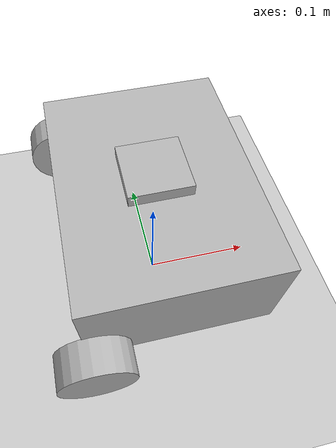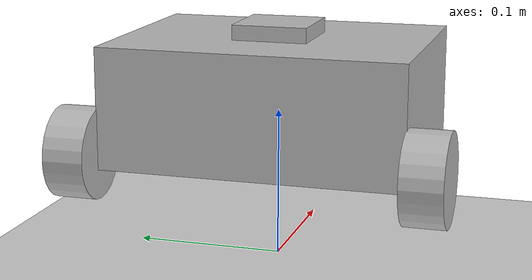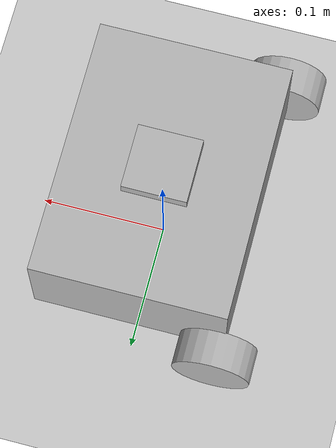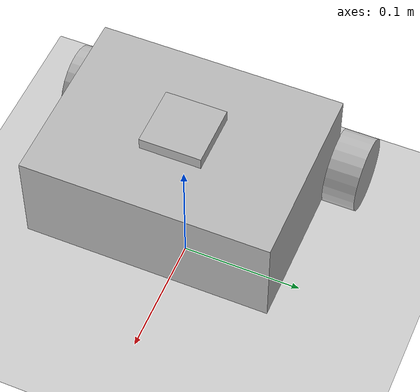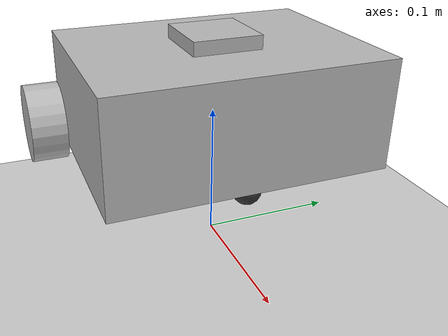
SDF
<?xml version="1.0" ?>
<sdf version="1.8">
  <world name="default">
    <plugin
      filename="gz-sim-physics-system"
      name="gz::sim::systems::Physics">
    </plugin>
    <plugin
      filename="gz-sim-sensors-system"
      name="gz::sim::systems::Sensors">
      <render_engine>ogre2</render_engine>
    </plugin>
    <plugin
      filename="gz-sim-scene-broadcaster-system"
      name="gz::sim::systems::SceneBroadcaster">
    </plugin>
    <plugin
      filename="gz-sim-user-commands-system"
      name="gz::sim::systems::UserCommands">
    </plugin>

    <light name="sun" type="directional">
      <cast_shadows>true</cast_shadows>
      <pose>0 0 10 0 0 0</pose>
      <diffuse>0.8 0.8 0.8 1</diffuse>
      <specular>0.2 0.2 0.2 1</specular>
      <attenuation>
        <range>1000</range>
        <constant>0.9</constant>
        <linear>0.01</linear>
        <quadratic>0.001</quadratic>
      </attenuation>
      <direction>-0.5 0.1 -0.9</direction>
    </light>

    <model name="ground_plane">
      <static>true</static>
      <link name="link">
        <collision name="collision">
          <geometry>
            <plane>
              <normal>0 0 1</normal>
              <size>100 100</size>
            </plane>
          </geometry>
        </collision>
        <visual name="visual">
          <geometry>
            <plane>
              <normal>0 0 1</normal>
              <size>100 100</size>
            </plane>
          </geometry>
          <material>
            <ambient>0.8 0.8 0.8 1</ambient>
            <diffuse>0.8 0.8 0.8 1</diffuse>
            <specular>0.8 0.8 0.8 1</specular>
          </material>
        </visual>
      </link>
    </model>

    <model name="zero_diff_drive">
      <self_collide>true</self_collide>
      <pose>0 0 0.10 0 0 0</pose>
      <include merge="true">
        <uri>package://zero_diff_drive_description/models/zero_diff_drive</uri>
      </include>

      <plugin
        filename="gz-sim-joint-state-publisher-system"
        name="gz::sim::systems::JointStatePublisher">
      </plugin>

      <plugin
        filename="gz-sim-odometry-publisher-system"
        name="gz::sim::systems::OdometryPublisher">
        <odom_frame>odom</odom_frame>
        <robot_base_frame>base_link</robot_base_frame>
      </plugin>
    </model>

  </world>
</sdf>

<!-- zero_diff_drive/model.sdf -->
<sdf version="1.8">
    <model name='zero_diff_drive'>
      <link name='base_link'>
        <pose>0.0 0.0 0.01 0 -0 0</pose>
        <inertial>
          <mass>0.2</mass>
          <inertia>
            <ixx>0.0126164</ixx>
            <ixy>0</ixy>
            <ixz>0</ixz>
            <iyy>0.0416519</iyy>
            <iyz>0</iyz>
            <izz>0.0481014</izz>
          </inertia>
        </inertial>
        <visual name='visual_base_link'>
          <geometry>
            <box>
              <size>0.15 0.2 0.08</size>
            </box>
          </geometry>
        </visual>
        <collision name='collision_base_link'>
          <geometry>
            <box>
              <size>0.15 0.2 0.08</size>
            </box>
          </geometry>
        </collision>
      </link>

      <link name='left_wheel'>
        <pose>-0.07 0.113 -0.02 -1.5707 0 0</pose>
        <inertial>
          <mass>0.1</mass>
          <inertia>
            <ixx>0.001</ixx>
            <ixy>0</ixy>
            <ixz>0</ixz>
            <iyy>0.001</iyy>
            <iyz>0</iyz>
            <izz>0.001</izz>
          </inertia>
        </inertial>
        <visual name='visual_left_wheel'>
          <geometry>
            <cylinder>
              <length>0.027</length>
              <radius>0.03</radius>
            </cylinder>
          </geometry>
        </visual>
        <collision name='collision_left_wheel'>
          <geometry>
            <sphere>
              <radius>0.03</radius>
            </sphere>
          </geometry>
        </collision>
      </link>

      <link name='right_wheel'>
        <pose>-0.07 -0.113 -0.02 -1.5707 0 0</pose>
        <inertial>
          <mass>0.1</mass>
          <inertia>
            <ixx>0.001</ixx>
            <ixy>0</ixy>
            <ixz>0</ixz>
            <iyy>0.001</iyy>
            <iyz>0</iyz>
            <izz>0.001</izz>
          </inertia>
        </inertial>
        <visual name='visual_right_wheel'>
          <geometry>
            <cylinder>
              <length>0.027</length>
              <radius>0.03</radius>
            </cylinder>
          </geometry>
        </visual>
        <collision name='collision_right_wheel'>
          <geometry>
            <sphere>
              <radius>0.03</radius>
            </sphere>
          </geometry>
        </collision>
      </link>

      <link name='caster'>
        <pose>0.06 -0 -0.035 0 -0 0</pose>
        <inertial>
          <mass>0.01</mass>
          <inertia>
            <ixx>0.001</ixx>
            <ixy>0</ixy>
            <ixz>0</ixz>
            <iyy>0.001</iyy>
            <iyz>0</iyz>
            <izz>0.001</izz>
          </inertia>
        </inertial>
        <visual name='visual_caster'>
          <geometry>
            <sphere>
              <radius>0.01</radius>
            </sphere>
          </geometry>
          <material>
            <ambient>0.2 0.2 0.2 1</ambient>
            <diffuse>0.2 0.2 0.2 1</diffuse>
            <specular>0.2 0.2 0.2 1</specular>
          </material>
        </visual>
        <collision name='collision_caster'>
          <geometry>
            <sphere>
              <radius>0.01</radius>
            </sphere>
          </geometry>
        </collision>
      </link>

      <link name="lidar_link">
        <pose>0 0 0.05 0 0 0</pose>
        <inertial>
          <mass>0.1</mass>
          <inertia>
            <ixx>0.000166667</ixx>
            <iyy>0.000166667</iyy>
            <izz>0.000166667</izz>
          </inertia>
        </inertial>
        <collision name="collision">
          <geometry>
            <box>
              <size>0.05 0.05 0.02</size>
            </box>
          </geometry>
        </collision>
        <visual name="visual">
          <geometry>
            <box>
              <size>0.05 0.05 0.02</size>
            </box>
          </geometry>
        </visual>
        <sensor name='gpu_lidar' type='gpu_lidar'>
          <pose>0 0 0 0 0 0</pose>
          <topic>scan</topic>
           <gz_frame_id>lidar_link</gz_frame_id>
          <update_rate>10</update_rate>
          <lidar>
            <scan>
              <horizontal>
                <samples>640</samples>
                <resolution>1</resolution>
                <min_angle>-3.14</min_angle>
                <max_angle>3.14</max_angle>
              </horizontal>
              <vertical>
                <samples>1</samples>
                <resolution>1</resolution>
                <min_angle>0.0</min_angle>
                <max_angle>0.0</max_angle>
              </vertical>
            </scan>
            <range>
              <min>0.08</min>
              <max>10.0</max>
              <resolution>0.01</resolution>
            </range>
          </lidar>
          <visualize>true</visualize>
        </sensor>
      </link>

      <joint name='lidar_joint' type='fixed'>
        <parent>base_link</parent>
        <child>lidar_link</child>
      </joint>

      <joint name='left_wheel_joint' type='revolute'>
        <parent>base_link</parent>
        <child>left_wheel</child>
        <axis>
          <xyz>0 0 1</xyz>
          <limit>
            <lower>-1.79769e+308</lower>
            <upper>1.79769e+308</upper>
          </limit>
        </axis>
      </joint>

      <joint name='right_wheel_joint' type='revolute'>
        <parent>base_link</parent>
        <child>right_wheel</child>
        <axis>
          <xyz>0 0 1</xyz>
          <limit>
            <lower>-1.79769e+308</lower>
            <upper>1.79769e+308</upper>
          </limit>
        </axis>
      </joint>

      <joint name='caster_wheel' type='ball'>
        <parent>base_link</parent>
        <child>caster</child>
      </joint>

      <plugin
        filename="ignition-gazebo-diff-drive-system"
        name="ignition::gazebo::systems::DiffDrive">
        <left_joint>left_wheel_joint</left_joint>
        <right_joint>right_wheel_joint</right_joint>
        <wheel_separation>0.2</wheel_separation>
        <wheel_radius>0.03</wheel_radius>
        <odom_publish_frequency>1</odom_publish_frequency>
        <max_linear_acceleration>1</max_linear_acceleration>
        <min_linear_acceleration>-1</min_linear_acceleration>
        <max_angular_acceleration>2</max_angular_acceleration>
        <min_angular_acceleration>-2</min_angular_acceleration>
        <max_linear_velocity>0.5</max_linear_velocity>
        <min_linear_velocity>-0.5</min_linear_velocity>
        <max_angular_velocity>1</max_angular_velocity>
        <min_angular_velocity>-1</min_angular_velocity>
      </plugin>
    </model>
</sdf>
